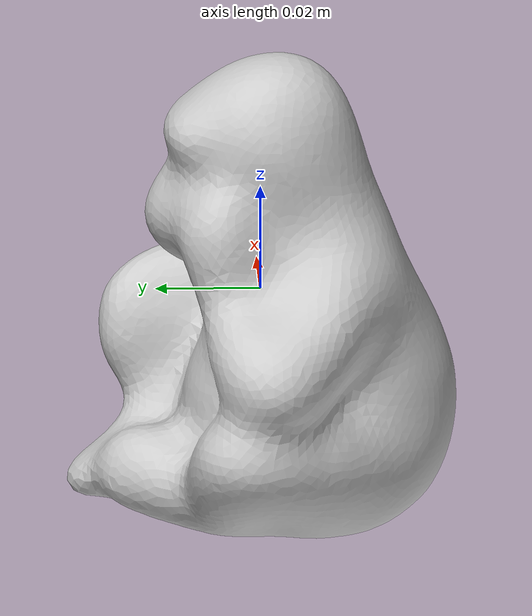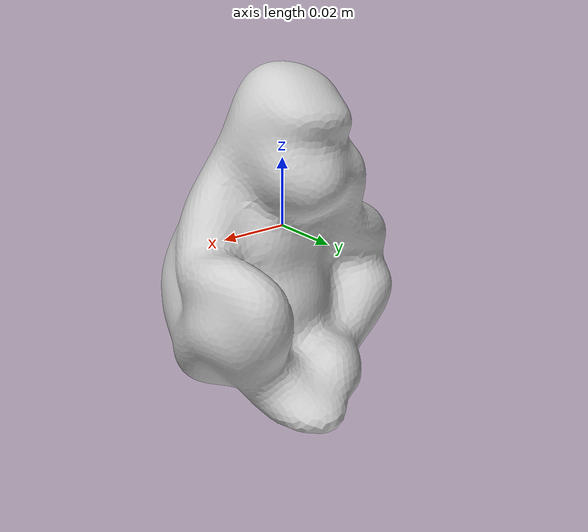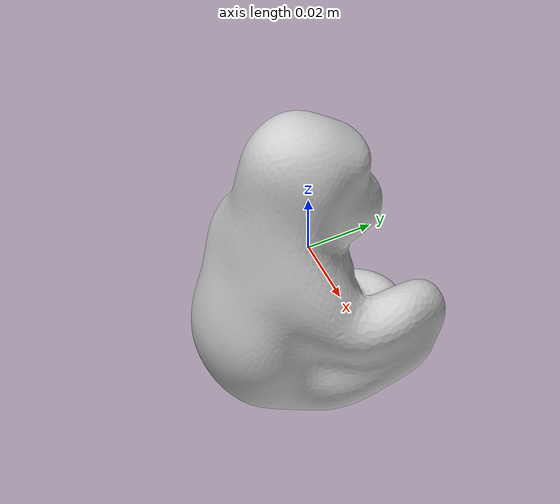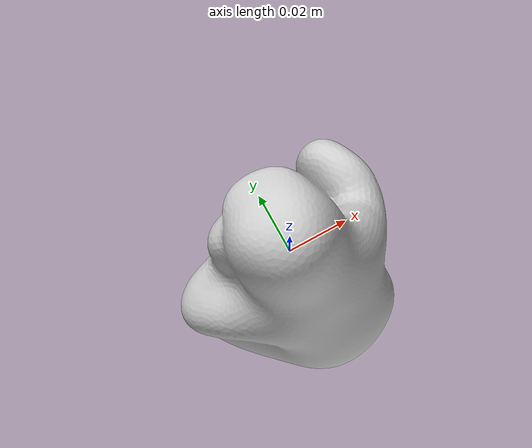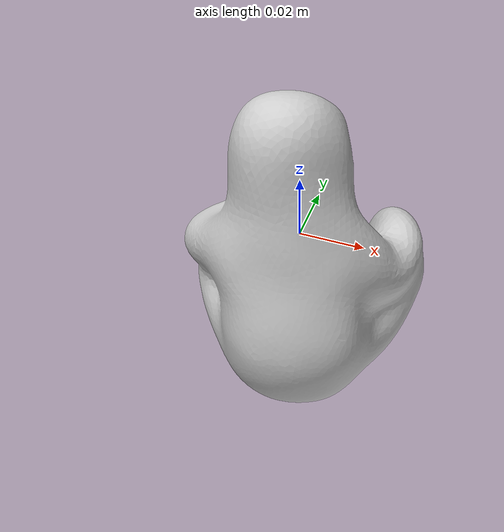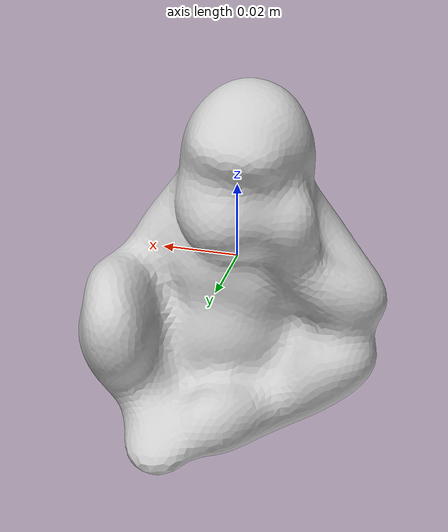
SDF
<?xml version="1.0" ?>
<sdf version="1.5">
  <model name="ape">
	<static>false</static>
    <pose>0 0 0 0 0 0</pose>
    <link name="link">
      <inertial>
        <mass>0.1</mass>
      </inertial>
      <collision name="collision">
        <geometry>
          <mesh>
            <uri>model://Ape/meshes/ape.dae</uri>
            <scale>0.8 0.8 0.8</scale>
          </mesh>
        </geometry>
      </collision>
      <visual name="visual">
        <geometry>
          <mesh>
            <uri>model://Ape/meshes/ape.dae</uri>
          </mesh>
        </geometry>
      </visual>
    </link>
  </model>
</sdf>
